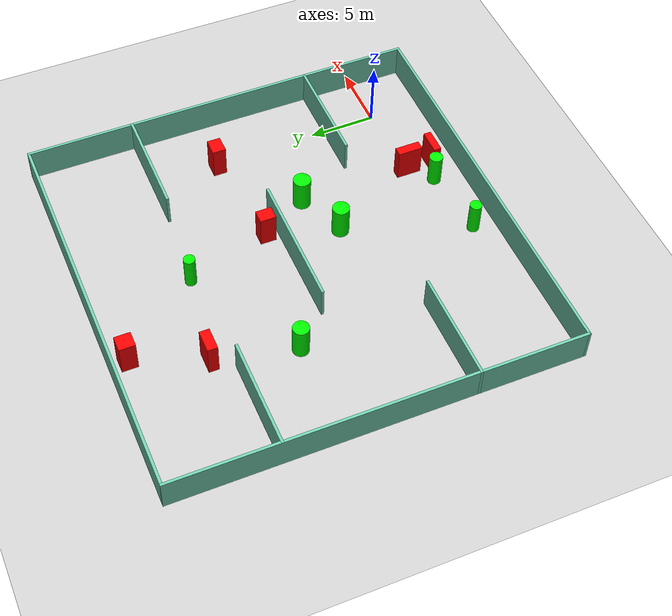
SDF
<sdf version="1.7">
 <world name="default">
  <light name="sun" type="directional">
   <pose>0 0 10 0 -0 0</pose>
   <diffuse>0.8 0.8 0.8 1</diffuse>
   <specular>0.2 0.2 0.2 1</specular>
   <attenuation>
    <range>1000</range>
    <constant>0.9</constant>
    <linear>0.01</linear>
    <quadratic>0.001</quadratic>
   </attenuation>
   <direction>-0.5 0.1 -0.9</direction>
   <spot><inner_angle>0</inner_angle><outer_angle>0</outer_angle><falloff>0</falloff></spot>
  </light>
  <model name="ground_plane">
   <static>1</static>
   <link name="link">
    <collision name="collision">
     <geometry><plane><normal>0 0 1</normal><size>100 100</size></plane></geometry>
     <surface>
      <contact><collide_bitmask>65535</collide_bitmask></contact>
      <friction><ode><mu>100</mu><mu2>50</mu2></ode></friction>
     </surface>
    </collision>
    <visual name="visual">
     <cast_shadows>0</cast_shadows>
     <geometry><plane><normal>0 0 1</normal><size>100 100</size></plane></geometry>
     <material>
      <script><uri>file://media/materials/scripts/gazebo.material</uri><name>Gazebo/Grey</name></script>
     </material>
    </visual>
   </link>
  </model>
  <gravity>0 0 -9.8</gravity>
  <magnetic_field>6e-06 2.3e-05 -4.2e-05</magnetic_field>
  <atmosphere type="adiabatic"/>
  <physics type="ode">
   <max_step_size>0.001</max_step_size>
   <real_time_factor>1</real_time_factor>
   <real_time_update_rate>1000</real_time_update_rate>
  </physics>
  <scene><ambient>0.4 0.4 0.4 1</ambient><background>0.7 0.7 0.7 1</background><shadows>1</shadows></scene>
  <spherical_coordinates>
   <surface_model>EARTH_WGS84</surface_model>
   <latitude_deg>0</latitude_deg>
   <longitude_deg>0</longitude_deg>
   <elevation>0</elevation>
   <heading_deg>0</heading_deg>
  </spherical_coordinates>
  <model name="my_base_walls">
   <link name="Wall_10">
    <collision name="Wall_10_Collision">
     <geometry><box><size>8.2 0.2 2.5</size></box></geometry>
     <pose>0 0 1.25 0 -0 0</pose>
    </collision>
    <visual name="Wall_10_Visual">
     <pose>0 0 1.25 0 -0 0</pose>
     <geometry><box><size>8.2 0.2 2.5</size></box></geometry>
     <material>
      <script><uri>file://media/materials/scripts/gazebo.material</uri><name>Gazebo/Grey</name></script>
      <ambient>0.435294 0.796078 0.67451 1</ambient>
     </material>
     <meta><layer>0</layer></meta>
    </visual>
    <pose>-11 -7 0 0 -0 0</pose>
   </link>
   <link name="Wall_12">
    <collision name="Wall_12_Collision">
     <geometry><box><size>8.2 0.2 2.5</size></box></geometry>
     <pose>0 0 1.25 0 -0 0</pose>
    </collision>
    <visual name="Wall_12_Visual">
     <pose>0 0 1.25 0 -0 0</pose>
     <geometry><box><size>8.2 0.2 2.5</size></box></geometry>
     <material>
      <script><uri>file://media/materials/scripts/gazebo.material</uri><name>Gazebo/Grey</name></script>
      <ambient>0.435294 0.796078 0.67451 1</ambient>
     </material>
     <meta><layer>0</layer></meta>
    </visual>
    <pose>-11 7 0 0 -0 0</pose>
   </link>
   <link name="Wall_14">
    <collision name="Wall_14_Collision">
     <geometry><box><size>8.2 0.2 2.5</size></box></geometry>
     <pose>0 0 1.25 0 -0 0</pose>
    </collision>
    <visual name="Wall_14_Visual">
     <pose>0 0 1.25 0 -0 0</pose>
     <geometry><box><size>8.2 0.2 2.5</size></box></geometry>
     <material>
      <script><uri>file://media/materials/scripts/gazebo.material</uri><name>Gazebo/Grey</name></script>
      <ambient>0.435294 0.796078 0.67451 1</ambient>
     </material>
     <meta><layer>0</layer></meta>
    </visual>
    <pose>11 7 0 0 -0 3.14159</pose>
   </link>
   <link name="Wall_16">
    <collision name="Wall_16_Collision">
     <geometry><box><size>10.2 0.2 2.5</size></box></geometry>
     <pose>0 0 1.25 0 -0 0</pose>
    </collision>
    <visual name="Wall_16_Visual">
     <pose>0 0 1.25 0 -0 0</pose>
     <geometry><box><size>10.2 0.2 2.5</size></box></geometry>
     <material>
      <script><uri>file://media/materials/scripts/gazebo.material</uri><name>Gazebo/Grey</name></script>
      <ambient>0.435294 0.796078 0.67451 1</ambient>
     </material>
     <meta><layer>0</layer></meta>
    </visual>
    <pose>0 0 0 0 -0 3.14159</pose>
   </link>
   <link name="Wall_2">
    <collision name="Wall_2_Collision">
     <geometry><box><size>30.2 0.2 2.5</size></box></geometry>
     <pose>0 0 1.25 0 -0 0</pose>
    </collision>
    <visual name="Wall_2_Visual">
     <pose>0 0 1.25 0 -0 0</pose>
     <geometry><box><size>30.2 0.2 2.5</size></box></geometry>
     <material>
      <script><uri>file://media/materials/scripts/gazebo.material</uri><name>Gazebo/Grey</name></script>
      <ambient>0.435294 0.796078 0.67451 1</ambient>
     </material>
     <meta><layer>0</layer></meta>
    </visual>
    <pose>0 -15 0 0 -0 3.14159</pose>
   </link>
   <link name="Wall_3">
    <collision name="Wall_3_Collision">
     <geometry><box><size>30.2 0.2 2.5</size></box></geometry>
     <pose>0 0 1.25 0 -0 0</pose>
    </collision>
    <visual name="Wall_3_Visual">
     <pose>0 0 1.25 0 -0 0</pose>
     <geometry><box><size>30.2 0.2 2.5</size></box></geometry>
     <material>
      <script><uri>file://media/materials/scripts/gazebo.material</uri><name>Gazebo/Grey</name></script>
      <ambient>0.435294 0.796078 0.67451 1</ambient>
     </material>
     <meta><layer>0</layer></meta>
    </visual>
    <pose>-15 0 0 0 -0 1.5708</pose>
   </link>
   <link name="Wall_4">
    <collision name="Wall_4_Collision">
     <geometry><box><size>30.2 0.2 2.5</size></box></geometry>
     <pose>0 0 1.25 0 -0 0</pose>
    </collision>
    <visual name="Wall_4_Visual">
     <pose>0 0 1.25 0 -0 0</pose>
     <geometry><box><size>30.2 0.2 2.5</size></box></geometry>
     <material>
      <script><uri>file://media/materials/scripts/gazebo.material</uri><name>Gazebo/Grey</name></script>
      <ambient>0.435294 0.796078 0.67451 1</ambient>
     </material>
     <meta><layer>0</layer></meta>
    </visual>
    <pose>0 15 0 0 -0 0</pose>
   </link>
   <link name="Wall_6">
    <collision name="Wall_6_Collision">
     <geometry><box><size>30.2 0.2 2.5</size></box></geometry>
     <pose>0 0 1.25 0 -0 0</pose>
    </collision>
    <visual name="Wall_6_Visual">
     <pose>0 0 1.25 0 -0 0</pose>
     <geometry><box><size>30.2 0.2 2.5</size></box></geometry>
     <material>
      <script><uri>file://media/materials/scripts/gazebo.material</uri><name>Gazebo/Grey</name></script>
      <ambient>0.435294 0.796078 0.67451 1</ambient>
     </material>
     <meta><layer>0</layer></meta>
    </visual>
    <pose>15 0 0 0 -0 1.5708</pose>
   </link>
   <link name="Wall_8">
    <collision name="Wall_8_Collision">
     <geometry><box><size>8.2 0.2 2.5</size></box></geometry>
     <pose>0 0 1.25 0 -0 0</pose>
    </collision>
    <visual name="Wall_8_Visual">
     <pose>0 0 1.25 0 -0 0</pose>
     <geometry><box><size>8.2 0.2 2.5</size></box></geometry>
     <material>
      <script><uri>file://media/materials/scripts/gazebo.material</uri><name>Gazebo/Grey</name></script>
      <ambient>0.435294 0.796078 0.67451 1</ambient>
     </material>
     <meta><layer>0</layer></meta>
    </visual>
    <pose>11 -7 0 0 -0 3.14159</pose>
   </link>
   <static>1</static>
   <pose>-11 11 0 0 -0 0</pose>
  </model>
  <model name="cylinder1">
   <static>1</static>
   <link name="link">
    <inertial>
     <mass>1</mass>
     <inertia><ixx>0.5</ixx><ixy>0</ixy><ixz>0</ixz><iyy>0.5</iyy><iyz>0</iyz><izz>1</izz></inertia>
    </inertial>
    <collision name="collision">
     <geometry><cylinder><radius>0.44471512404829283</radius><length>2.5</length></cylinder></geometry>
    </collision>
    <visual name="visual">
     <geometry><cylinder><radius>0.44471512404829283</radius><length>2.5</length></cylinder></geometry>
     <material>
      <ambient>0 1 0 1</ambient>
      <diffuse>0 1 0 1</diffuse>
      <specular>0.1 0.1 0.1 1</specular>
      <emissive>0 0 0 0</emissive>
     </material>
    </visual>
   </link>
   <pose>-13.015514999971927 -2.21897169493264 1.25 0 0 0</pose>
  </model>
  <model name="cylinder2">
   <static>1</static>
   <link name="link">
    <inertial>
     <mass>1</mass>
     <inertia><ixx>0.5</ixx><ixy>0</ixy><ixz>0</ixz><iyy>0.5</iyy><iyz>0</iyz><izz>1</izz></inertia>
    </inertial>
    <collision name="collision">
     <geometry><cylinder><radius>0.6019106101370071</radius><length>2.5</length></cylinder></geometry>
    </collision>
    <visual name="visual">
     <geometry><cylinder><radius>0.6019106101370071</radius><length>2.5</length></cylinder></geometry>
     <material>
      <ambient>0 1 0 1</ambient>
      <diffuse>0 1 0 1</diffuse>
      <specular>0.1 0.1 0.1 1</specular>
      <emissive>0 0 0 0</emissive>
     </material>
    </visual>
   </link>
   <pose>-18.296655943319422 13.524114206826901 1.25 0 0 0</pose>
  </model>
  <model name="cylinder3">
   <static>1</static>
   <link name="link">
    <inertial>
     <mass>1</mass>
     <inertia><ixx>0.5</ixx><ixy>0</ixy><ixz>0</ixz><iyy>0.5</iyy><iyz>0</iyz><izz>1</izz></inertia>
    </inertial>
    <collision name="collision">
     <geometry><cylinder><radius>0.6574614108014938</radius><length>2.5</length></cylinder></geometry>
    </collision>
    <visual name="visual">
     <geometry><cylinder><radius>0.6574614108014938</radius><length>2.5</length></cylinder></geometry>
     <material>
      <ambient>0 1 0 1</ambient>
      <diffuse>0 1 0 1</diffuse>
      <specular>0.1 0.1 0.1 1</specular>
      <emissive>0 0 0 0</emissive>
     </material>
    </visual>
   </link>
   <pose>-6.041496330344437 8.361215070505594 1.25 0 0 0</pose>
  </model>
  <model name="cylinder4">
   <static>1</static>
   <link name="link">
    <inertial>
     <mass>1</mass>
     <inertia><ixx>0.5</ixx><ixy>0</ixy><ixz>0</ixz><iyy>0.5</iyy><iyz>0</iyz><izz>1</izz></inertia>
    </inertial>
    <collision name="collision">
     <geometry><cylinder><radius>0.6343920436061641</radius><length>2.5</length></cylinder></geometry>
    </collision>
    <visual name="visual">
     <geometry><cylinder><radius>0.6343920436061641</radius><length>2.5</length></cylinder></geometry>
     <material>
      <ambient>0 1 0 1</ambient>
      <diffuse>0 1 0 1</diffuse>
      <specular>0.1 0.1 0.1 1</specular>
      <emissive>0 0 0 0</emissive>
     </material>
    </visual>
   </link>
   <pose>-9.607567618454894 6.823192404110635 1.25 0 0 0</pose>
  </model>
  <model name="cylinder5">
   <static>1</static>
   <link name="link">
    <inertial>
     <mass>1</mass>
     <inertia><ixx>0.5</ixx><ixy>0</ixy><ixz>0</ixz><iyy>0.5</iyy><iyz>0</iyz><izz>1</izz></inertia>
    </inertial>
    <collision name="collision">
     <geometry><cylinder><radius>0.42450147531196714</radius><length>2.5</length></cylinder></geometry>
    </collision>
    <visual name="visual">
     <geometry><cylinder><radius>0.42450147531196714</radius><length>2.5</length></cylinder></geometry>
     <material>
      <ambient>0 1 0 1</ambient>
      <diffuse>0 1 0 1</diffuse>
      <specular>0.1 0.1 0.1 1</specular>
      <emissive>0 0 0 0</emissive>
     </material>
    </visual>
   </link>
   <pose>-9.9193337809728 18.438559639487078 1.25 0 0 0</pose>
  </model>
  <model name="cylinder6">
   <static>1</static>
   <link name="link">
    <inertial>
     <mass>1</mass>
     <inertia><ixx>0.5</ixx><ixy>0</ixy><ixz>0</ixz><iyy>0.5</iyy><iyz>0</iyz><izz>1</izz></inertia>
    </inertial>
    <collision name="collision">
     <geometry><cylinder><radius>0.5015351309534994</radius><length>2.5</length></cylinder></geometry>
    </collision>
    <visual name="visual">
     <geometry><cylinder><radius>0.5015351309534994</radius><length>2.5</length></cylinder></geometry>
     <material>
      <ambient>0 1 0 1</ambient>
      <diffuse>0 1 0 1</diffuse>
      <specular>0.1 0.1 0.1 1</specular>
      <emissive>0 0 0 0</emissive>
     </material>
    </visual>
   </link>
   <pose>-7.69656131405406 -1.657658480502863 1.25 0 0 0</pose>
  </model>
  <model name="box1">
   <static>1</static>
   <link name="link">
    <inertial>
     <mass>1</mass>
     <inertia><ixx>0.083</ixx><ixy>0</ixy><ixz>0</ixz><iyy>0.083</iyy><iyz>0</iyz><izz>0.083</izz></inertia>
    </inertial>
    <collision name="collision">
     <geometry><box><size>0.6889305764696726 1.8591125579896999 2.5</size></box></geometry>
    </collision>
    <visual name="visual">
     <geometry><box><size>0.6889305764696726 1.8591125579896999 2.5</size></box></geometry>
     <material>
      <ambient>1 0 0 1</ambient>
      <diffuse>1 0 0 1</diffuse>
      <specular>0.1 0.1 0.1 1</specular>
      <emissive>0 0 0 0</emissive>
     </material>
    </visual>
    <sensor name="my_contact" type="contact">
     <contact><collision>box_collision</collision><topic>__default_topic__</topic></contact>
    </sensor>
   </link>
   <pose>-6.141886915627959 -0.16239083924221287 1.25 0 0 0</pose>
  </model>
  <model name="box2">
   <static>1</static>
   <link name="link">
    <inertial>
     <mass>1</mass>
     <inertia><ixx>0.083</ixx><ixy>0</ixy><ixz>0</ixz><iyy>0.083</iyy><iyz>0</iyz><izz>0.083</izz></inertia>
    </inertial>
    <collision name="collision">
     <geometry><box><size>1.155218072752922 1.1933735027517578 2.5</size></box></geometry>
    </collision>
    <visual name="visual">
     <geometry><box><size>1.155218072752922 1.1933735027517578 2.5</size></box></geometry>
     <material>
      <ambient>1 0 0 1</ambient>
      <diffuse>1 0 0 1</diffuse>
      <specular>0.1 0.1 0.1 1</specular>
      <emissive>0 0 0 0</emissive>
     </material>
    </visual>
    <sensor name="my_contact" type="contact">
     <contact><collision>box_collision</collision><topic>__default_topic__</topic></contact>
    </sensor>
   </link>
   <pose>-14.881068137200721 24.735289886802537 1.25 0 0 0</pose>
  </model>
  <model name="box3">
   <static>1</static>
   <link name="link">
    <inertial>
     <mass>1</mass>
     <inertia><ixx>0.083</ixx><ixy>0</ixy><ixz>0</ixz><iyy>0.083</iyy><iyz>0</iyz><izz>0.083</izz></inertia>
    </inertial>
    <collision name="collision">
     <geometry><box><size>1.8180694510668962 0.5575574839604365 2.5</size></box></geometry>
    </collision>
    <visual name="visual">
     <geometry><box><size>1.8180694510668962 0.5575574839604365 2.5</size></box></geometry>
     <material>
      <ambient>1 0 0 1</ambient>
      <diffuse>1 0 0 1</diffuse>
      <specular>0.1 0.1 0.1 1</specular>
      <emissive>0 0 0 0</emissive>
     </material>
    </visual>
    <sensor name="my_contact" type="contact">
     <contact><collision>box_collision</collision><topic>__default_topic__</topic></contact>
    </sensor>
   </link>
   <pose>-6.140641222957381 -2.0916929663965997 1.25 0 0 0</pose>
  </model>
  <model name="box4">
   <static>1</static>
   <link name="link">
    <inertial>
     <mass>1</mass>
     <inertia><ixx>0.083</ixx><ixy>0</ixy><ixz>0</ixz><iyy>0.083</iyy><iyz>0</iyz><izz>0.083</izz></inertia>
    </inertial>
    <collision name="collision">
     <geometry><box><size>1.268266941019931 1.0029413023189446 2.5</size></box></geometry>
    </collision>
    <visual name="visual">
     <geometry><box><size>1.268266941019931 1.0029413023189446 2.5</size></box></geometry>
     <material>
      <ambient>1 0 0 1</ambient>
      <diffuse>1 0 0 1</diffuse>
      <specular>0.1 0.1 0.1 1</specular>
      <emissive>0 0 0 0</emissive>
     </material>
    </visual>
    <sensor name="my_contact" type="contact">
     <contact><collision>box_collision</collision><topic>__default_topic__</topic></contact>
    </sensor>
   </link>
   <pose>-0.4587547153372249 12.916787273972934 1.25 0 0 0</pose>
  </model>
  <model name="box5">
   <static>1</static>
   <link name="link">
    <inertial>
     <mass>1</mass>
     <inertia><ixx>0.083</ixx><ixy>0</ixy><ixz>0</ixz><iyy>0.083</iyy><iyz>0</iyz><izz>0.083</izz></inertia>
    </inertial>
    <collision name="collision">
     <geometry><box><size>1.6663251316216825 0.7506343743663622 2.5</size></box></geometry>
    </collision>
    <visual name="visual">
     <geometry><box><size>1.6663251316216825 0.7506343743663622 2.5</size></box></geometry>
     <material>
      <ambient>1 0 0 1</ambient>
      <diffuse>1 0 0 1</diffuse>
      <specular>0.1 0.1 0.1 1</specular>
      <emissive>0 0 0 0</emissive>
     </material>
    </visual>
    <sensor name="my_contact" type="contact">
     <contact><collision>box_collision</collision><topic>__default_topic__</topic></contact>
    </sensor>
   </link>
   <pose>-16.87063686245852 19.57135233308338 1.25 0 0 0</pose>
  </model>
  <model name="box6">
   <static>1</static>
   <link name="link">
    <inertial>
     <mass>1</mass>
     <inertia><ixx>0.083</ixx><ixy>0</ixy><ixz>0</ixz><iyy>0.083</iyy><iyz>0</iyz><izz>0.083</izz></inertia>
    </inertial>
    <collision name="collision">
     <geometry><box><size>1.0102089075276122 1.2011932458970183 2.5</size></box></geometry>
    </collision>
    <visual name="visual">
     <geometry><box><size>1.0102089075276122 1.2011932458970183 2.5</size></box></geometry>
     <material>
      <ambient>1 0 0 1</ambient>
      <diffuse>1 0 0 1</diffuse>
      <specular>0.1 0.1 0.1 1</specular>
      <emissive>0 0 0 0</emissive>
     </material>
    </visual>
    <sensor name="my_contact" type="contact">
     <contact><collision>box_collision</collision><topic>__default_topic__</topic></contact>
    </sensor>
   </link>
   <pose>-8.131264260083238 12.018725373236578 1.25 0 0 0</pose>
  </model>
 </world>
</sdf>
